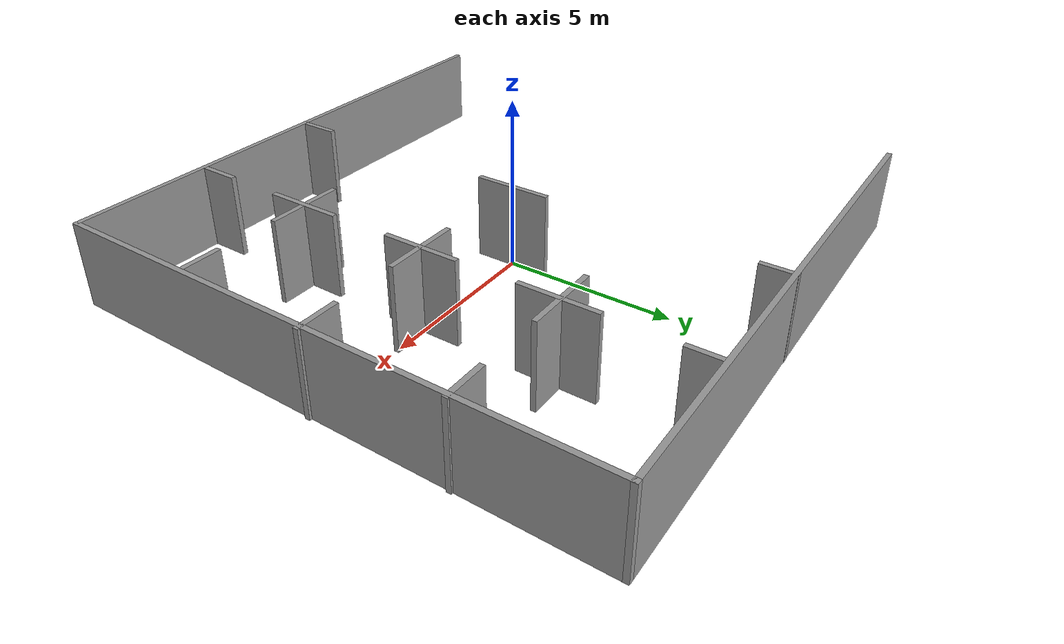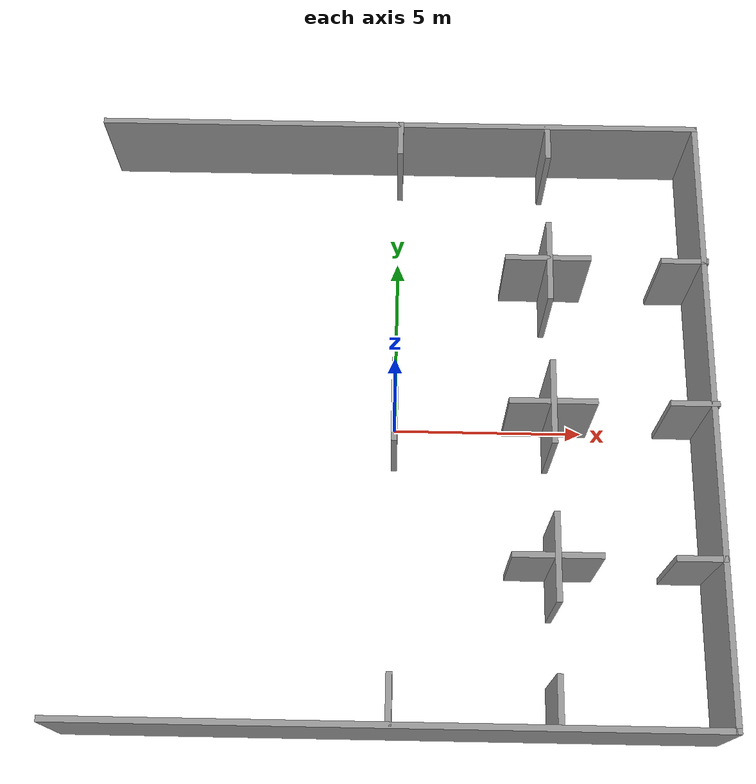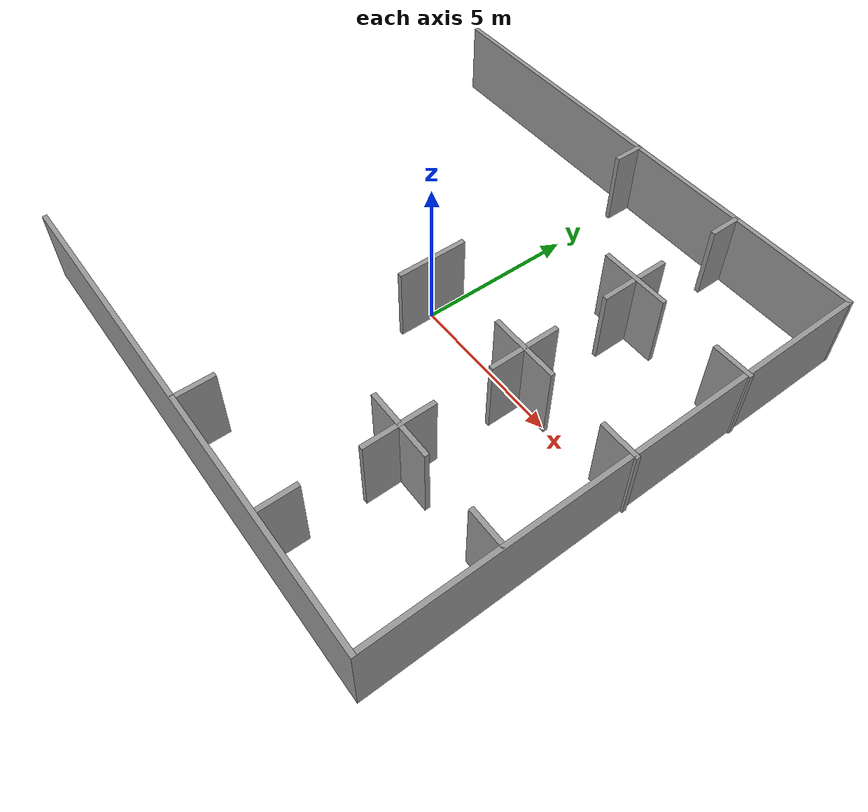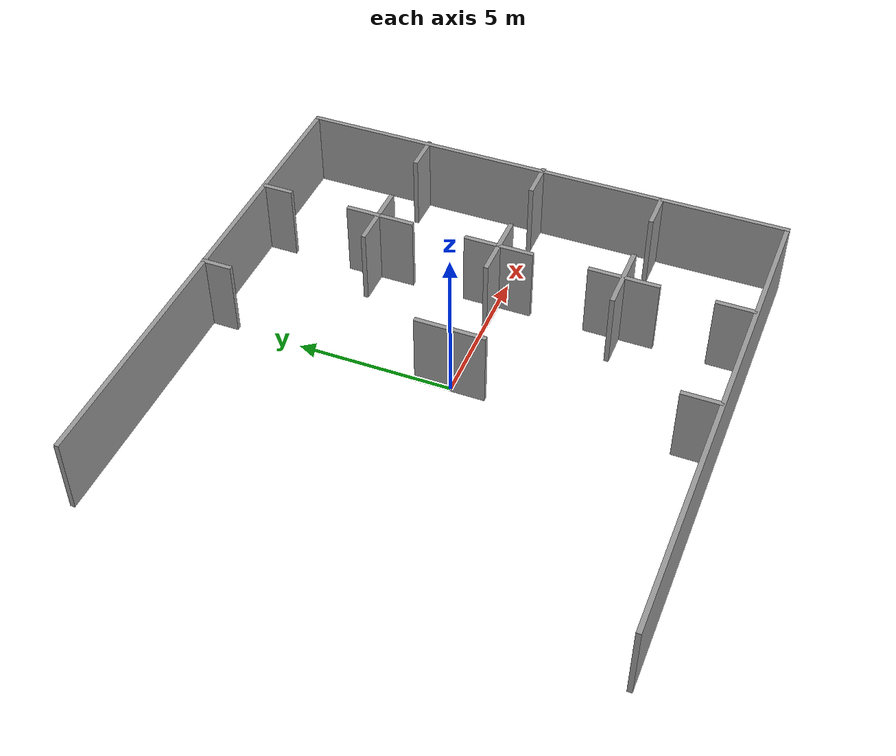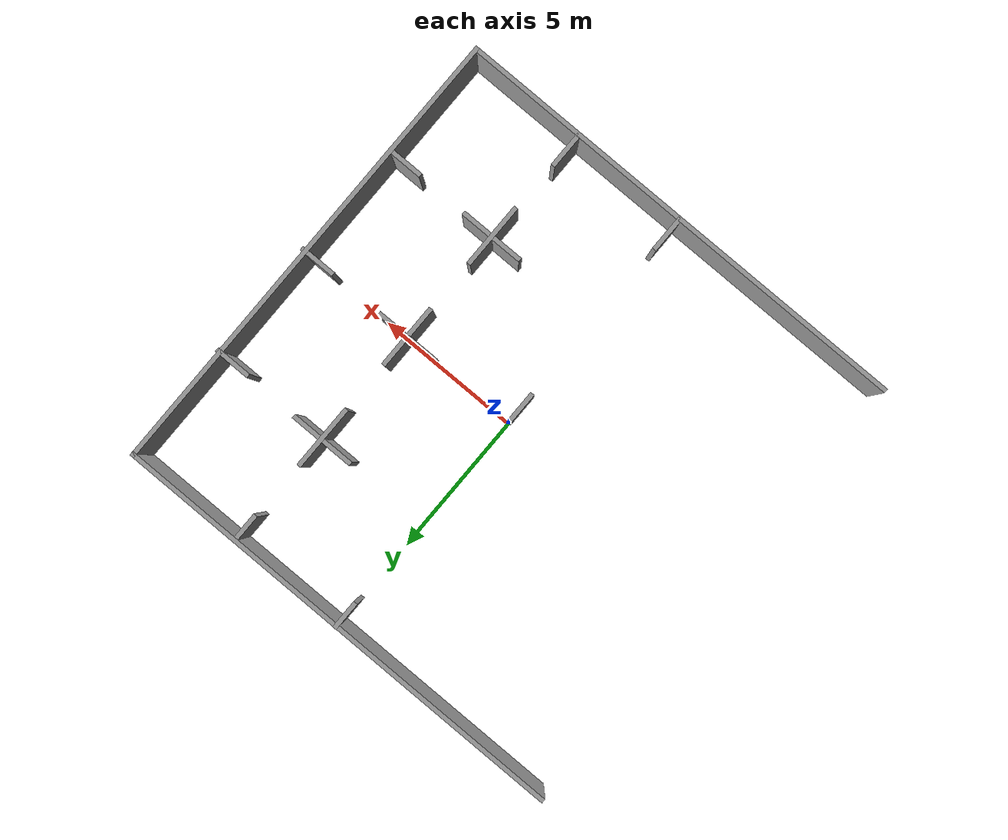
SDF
<sdf version="1.6">
 <model name="grid">
  <link name="Wall_1">
   <pose>-0.008852 -8.05426 0 0 -0 0</pose>
   <visual name="Wall_1_Visual">
    <pose>0 0 1.25 0 -0 0</pose>
    <geometry><box><size>16.25 0.15 2.5</size></box></geometry>
    <material>
     <script><uri>file://media/materials/scripts/gazebo.material</uri><name>Gazebo/Grey</name></script>
     <ambient>1 1 1 1</ambient>
     <diffuse>0.7 0.7 0.7 1</diffuse>
     <specular>0.01 0.01 0.01 1</specular>
     <emissive>0 0 0 1</emissive>
    </material>
   </visual>
   <collision name="Wall_1_Collision">
    <pose>0 0 1.25 0 -0 0</pose>
    <geometry><box><size>16.25 0.15 2.5</size></box></geometry>
    <surface>
     <friction>
      <ode><mu>1</mu><mu2>1</mu2><fdir1>0 0 0</fdir1><slip1>0</slip1><slip2>0</slip2></ode>
      <torsional>
       <coefficient>1</coefficient>
       <patch_radius>0</patch_radius>
       <surface_radius>0</surface_radius>
       <use_patch_radius>1</use_patch_radius>
       <ode><slip>0</slip></ode>
      </torsional>
     </friction>
     <bounce><restitution_coefficient>0</restitution_coefficient><threshold>1e+06</threshold></bounce>
     <contact>
      <collide_without_contact>0</collide_without_contact>
      <collide_without_contact_bitmask>1</collide_without_contact_bitmask>
      <collide_bitmask>1</collide_bitmask>
      <ode>
       <soft_cfm>0</soft_cfm>
       <soft_erp>0.2</soft_erp>
       <kp>1e+13</kp>
       <kd>1</kd>
       <max_vel>0.01</max_vel>
       <min_depth>0</min_depth>
      </ode>
      <bullet>
       <split_impulse>1</split_impulse>
       <split_impulse_penetration_threshold>-0.01</split_impulse_penetration_threshold>
       <soft_cfm>0</soft_cfm>
       <soft_erp>0.2</soft_erp>
       <kp>1e+13</kp>
       <kd>1</kd>
      </bullet>
     </contact>
    </surface>
   </collision>
  </link>
  <link name="Wall_104">
   <pose>-0.007344 0.003934 0 0 0 -1.5708</pose>
   <visual name="Wall_104_Visual">
    <pose>0 0 1.25 0 -0 0</pose>
    <geometry><box><size>2.25 0.15 2.5</size></box></geometry>
    <material>
     <script><uri>file://media/materials/scripts/gazebo.material</uri><name>Gazebo/Grey</name></script>
     <ambient>1 1 1 1</ambient>
     <diffuse>0.7 0.7 0.7 1</diffuse>
     <specular>0.01 0.01 0.01 1</specular>
     <emissive>0 0 0 1</emissive>
    </material>
   </visual>
   <collision name="Wall_104_Collision">
    <pose>0 0 1.25 0 -0 0</pose>
    <geometry><box><size>2.25 0.15 2.5</size></box></geometry>
    <surface>
     <friction>
      <ode><mu>1</mu><mu2>1</mu2><fdir1>0 0 0</fdir1><slip1>0</slip1><slip2>0</slip2></ode>
      <torsional>
       <coefficient>1</coefficient>
       <patch_radius>0</patch_radius>
       <surface_radius>0</surface_radius>
       <use_patch_radius>1</use_patch_radius>
       <ode><slip>0</slip></ode>
      </torsional>
     </friction>
     <bounce><restitution_coefficient>0</restitution_coefficient><threshold>1e+06</threshold></bounce>
     <contact>
      <collide_without_contact>0</collide_without_contact>
      <collide_without_contact_bitmask>1</collide_without_contact_bitmask>
      <collide_bitmask>1</collide_bitmask>
      <ode>
       <soft_cfm>0</soft_cfm>
       <soft_erp>0.2</soft_erp>
       <kp>1e+13</kp>
       <kd>1</kd>
       <max_vel>0.01</max_vel>
       <min_depth>0</min_depth>
      </ode>
      <bullet>
       <split_impulse>1</split_impulse>
       <split_impulse_penetration_threshold>-0.01</split_impulse_penetration_threshold>
       <soft_cfm>0</soft_cfm>
       <soft_erp>0.2</soft_erp>
       <kp>1e+13</kp>
       <kd>1</kd>
      </bullet>
     </contact>
    </surface>
   </collision>
  </link>
  <link name="Wall_2">
   <pose>8.04115 -0.004256 0 0 -0 1.5708</pose>
   <visual name="Wall_2_Visual">
    <pose>0 0 1.25 0 -0 0</pose>
    <geometry><box><size>16.25 0.15 2.5</size></box></geometry>
    <material>
     <script><uri>file://media/materials/scripts/gazebo.material</uri><name>Gazebo/Grey</name></script>
     <ambient>1 1 1 1</ambient>
     <diffuse>0.7 0.7 0.7 1</diffuse>
     <specular>0.01 0.01 0.01 1</specular>
     <emissive>0 0 0 1</emissive>
    </material>
   </visual>
   <collision name="Wall_2_Collision">
    <pose>0 0 1.25 0 -0 0</pose>
    <geometry><box><size>16.25 0.15 2.5</size></box></geometry>
    <surface>
     <friction>
      <ode><mu>1</mu><mu2>1</mu2><fdir1>0 0 0</fdir1><slip1>0</slip1><slip2>0</slip2></ode>
      <torsional>
       <coefficient>1</coefficient>
       <patch_radius>0</patch_radius>
       <surface_radius>0</surface_radius>
       <use_patch_radius>1</use_patch_radius>
       <ode><slip>0</slip></ode>
      </torsional>
     </friction>
     <bounce><restitution_coefficient>0</restitution_coefficient><threshold>1e+06</threshold></bounce>
     <contact>
      <collide_without_contact>0</collide_without_contact>
      <collide_without_contact_bitmask>1</collide_without_contact_bitmask>
      <collide_bitmask>1</collide_bitmask>
      <ode>
       <soft_cfm>0</soft_cfm>
       <soft_erp>0.2</soft_erp>
       <kp>1e+13</kp>
       <kd>1</kd>
       <max_vel>0.01</max_vel>
       <min_depth>0</min_depth>
      </ode>
      <bullet>
       <split_impulse>1</split_impulse>
       <split_impulse_penetration_threshold>-0.01</split_impulse_penetration_threshold>
       <soft_cfm>0</soft_cfm>
       <soft_erp>0.2</soft_erp>
       <kp>1e+13</kp>
       <kd>1</kd>
      </bullet>
     </contact>
    </surface>
   </collision>
  </link>
  <link name="Wall_25">
   <pose>3.99567 3.97198 0 0 0 -1.5708</pose>
   <visual name="Wall_25_Visual">
    <pose>0 0 1.25 0 -0 0</pose>
    <geometry><box><size>2.25 0.15 2.5</size></box></geometry>
    <material>
     <script><uri>file://media/materials/scripts/gazebo.material</uri><name>Gazebo/Grey</name></script>
     <ambient>1 1 1 1</ambient>
     <diffuse>0.7 0.7 0.7 1</diffuse>
     <specular>0.01 0.01 0.01 1</specular>
     <emissive>0 0 0 1</emissive>
    </material>
   </visual>
   <collision name="Wall_25_Collision">
    <pose>0 0 1.25 0 -0 0</pose>
    <geometry><box><size>2.25 0.15 2.5</size></box></geometry>
    <surface>
     <friction>
      <ode><mu>1</mu><mu2>1</mu2><fdir1>0 0 0</fdir1><slip1>0</slip1><slip2>0</slip2></ode>
      <torsional>
       <coefficient>1</coefficient>
       <patch_radius>0</patch_radius>
       <surface_radius>0</surface_radius>
       <use_patch_radius>1</use_patch_radius>
       <ode><slip>0</slip></ode>
      </torsional>
     </friction>
     <bounce><restitution_coefficient>0</restitution_coefficient><threshold>1e+06</threshold></bounce>
     <contact>
      <collide_without_contact>0</collide_without_contact>
      <collide_without_contact_bitmask>1</collide_without_contact_bitmask>
      <collide_bitmask>1</collide_bitmask>
      <ode>
       <soft_cfm>0</soft_cfm>
       <soft_erp>0.2</soft_erp>
       <kp>1e+13</kp>
       <kd>1</kd>
       <max_vel>0.01</max_vel>
       <min_depth>0</min_depth>
      </ode>
      <bullet>
       <split_impulse>1</split_impulse>
       <split_impulse_penetration_threshold>-0.01</split_impulse_penetration_threshold>
       <soft_cfm>0</soft_cfm>
       <soft_erp>0.2</soft_erp>
       <kp>1e+13</kp>
       <kd>1</kd>
      </bullet>
     </contact>
    </surface>
   </collision>
  </link>
  <link name="Wall_29">
   <pose>7.54259 3.99618 0 0 -0 0</pose>
   <visual name="Wall_29_Visual">
    <pose>0 0 1.25 0 -0 0</pose>
    <geometry><box><size>1.25 0.15 2.5</size></box></geometry>
    <material>
     <script><uri>file://media/materials/scripts/gazebo.material</uri><name>Gazebo/Grey</name></script>
     <ambient>1 1 1 1</ambient>
     <diffuse>0.7 0.7 0.7 1</diffuse>
     <specular>0.01 0.01 0.01 1</specular>
     <emissive>0 0 0 1</emissive>
    </material>
   </visual>
   <collision name="Wall_29_Collision">
    <pose>0 0 1.25 0 -0 0</pose>
    <geometry><box><size>1.25 0.15 2.5</size></box></geometry>
    <surface>
     <friction>
      <ode><mu>1</mu><mu2>1</mu2><fdir1>0 0 0</fdir1><slip1>0</slip1><slip2>0</slip2></ode>
      <torsional>
       <coefficient>1</coefficient>
       <patch_radius>0</patch_radius>
       <surface_radius>0</surface_radius>
       <use_patch_radius>1</use_patch_radius>
       <ode><slip>0</slip></ode>
      </torsional>
     </friction>
     <bounce><restitution_coefficient>0</restitution_coefficient><threshold>1e+06</threshold></bounce>
     <contact>
      <collide_without_contact>0</collide_without_contact>
      <collide_without_contact_bitmask>1</collide_without_contact_bitmask>
      <collide_bitmask>1</collide_bitmask>
      <ode>
       <soft_cfm>0</soft_cfm>
       <soft_erp>0.2</soft_erp>
       <kp>1e+13</kp>
       <kd>1</kd>
       <max_vel>0.01</max_vel>
       <min_depth>0</min_depth>
      </ode>
      <bullet>
       <split_impulse>1</split_impulse>
       <split_impulse_penetration_threshold>-0.01</split_impulse_penetration_threshold>
       <soft_cfm>0</soft_cfm>
       <soft_erp>0.2</soft_erp>
       <kp>1e+13</kp>
       <kd>1</kd>
      </bullet>
     </contact>
    </surface>
   </collision>
  </link>
  <link name="Wall_3">
   <pose>-0.008852 8.04574 0 0 -0 3.14159</pose>
   <visual name="Wall_3_Visual">
    <pose>0 0 1.25 0 -0 0</pose>
    <geometry><box><size>16.25 0.15 2.5</size></box></geometry>
    <material>
     <script><uri>file://media/materials/scripts/gazebo.material</uri><name>Gazebo/Grey</name></script>
     <ambient>1 1 1 1</ambient>
     <diffuse>0.7 0.7 0.7 1</diffuse>
     <specular>0.01 0.01 0.01 1</specular>
     <emissive>0 0 0 1</emissive>
    </material>
   </visual>
   <collision name="Wall_3_Collision">
    <pose>0 0 1.25 0 -0 0</pose>
    <geometry><box><size>16.25 0.15 2.5</size></box></geometry>
    <surface>
     <friction>
      <ode><mu>1</mu><mu2>1</mu2><fdir1>0 0 0</fdir1><slip1>0</slip1><slip2>0</slip2></ode>
      <torsional>
       <coefficient>1</coefficient>
       <patch_radius>0</patch_radius>
       <surface_radius>0</surface_radius>
       <use_patch_radius>1</use_patch_radius>
       <ode><slip>0</slip></ode>
      </torsional>
     </friction>
     <bounce><restitution_coefficient>0</restitution_coefficient><threshold>1e+06</threshold></bounce>
     <contact>
      <collide_without_contact>0</collide_without_contact>
      <collide_without_contact_bitmask>1</collide_without_contact_bitmask>
      <collide_bitmask>1</collide_bitmask>
      <ode>
       <soft_cfm>0</soft_cfm>
       <soft_erp>0.2</soft_erp>
       <kp>1e+13</kp>
       <kd>1</kd>
       <max_vel>0.01</max_vel>
       <min_depth>0</min_depth>
      </ode>
      <bullet>
       <split_impulse>1</split_impulse>
       <split_impulse_penetration_threshold>-0.01</split_impulse_penetration_threshold>
       <soft_cfm>0</soft_cfm>
       <soft_erp>0.2</soft_erp>
       <kp>1e+13</kp>
       <kd>1</kd>
      </bullet>
     </contact>
    </surface>
   </collision>
  </link>
  <link name="Wall_46">
   <pose>4.00578 -0.000512 0 0 0 -1.5708</pose>
   <inertial>
    <mass>1</mass>
    <inertia><ixx>1</ixx><ixy>0</ixy><ixz>0</ixz><iyy>1</iyy><iyz>0</iyz><izz>1</izz></inertia>
   </inertial>
   <visual name="Wall_46_Visual">
    <pose>0 0 1.25 0 -0 0</pose>
    <geometry><box><size>2.25 0.15 2.5</size></box></geometry>
    <material>
     <script><uri>file://media/materials/scripts/gazebo.material</uri><name>Gazebo/Grey</name></script>
     <ambient>1 1 1 1</ambient>
     <diffuse>0.7 0.7 0.7 1</diffuse>
     <specular>0.01 0.01 0.01 1</specular>
     <emissive>0 0 0 1</emissive>
     <shader type="vertex"><normal_map>__default__</normal_map></shader>
    </material>
   </visual>
   <collision name="Wall_46_Collision">
    <pose>0 0 1.25 0 -0 0</pose>
    <geometry><box><size>2.25 0.15 2.5</size></box></geometry>
    <surface>
     <friction>
      <ode><mu>1</mu><mu2>1</mu2><fdir1>0 0 0</fdir1><slip1>0</slip1><slip2>0</slip2></ode>
      <torsional>
       <coefficient>1</coefficient>
       <patch_radius>0</patch_radius>
       <surface_radius>0</surface_radius>
       <use_patch_radius>1</use_patch_radius>
       <ode><slip>0</slip></ode>
      </torsional>
     </friction>
     <bounce><restitution_coefficient>0</restitution_coefficient><threshold>1e+06</threshold></bounce>
     <contact>
      <collide_without_contact>0</collide_without_contact>
      <collide_without_contact_bitmask>1</collide_without_contact_bitmask>
      <collide_bitmask>1</collide_bitmask>
      <ode>
       <soft_cfm>0</soft_cfm>
       <soft_erp>0.2</soft_erp>
       <kp>1e+13</kp>
       <kd>1</kd>
       <max_vel>0.01</max_vel>
       <min_depth>0</min_depth>
      </ode>
      <bullet>
       <split_impulse>1</split_impulse>
       <split_impulse_penetration_threshold>-0.01</split_impulse_penetration_threshold>
       <soft_cfm>0</soft_cfm>
       <soft_erp>0.2</soft_erp>
       <kp>1e+13</kp>
       <kd>1</kd>
      </bullet>
     </contact>
    </surface>
   </collision>
  </link>
  <link name="Wall_48">
   <pose>4.0001 0 0 0 -0 0</pose>
   <inertial>
    <mass>1</mass>
    <inertia><ixx>1</ixx><ixy>0</ixy><ixz>0</ixz><iyy>1</iyy><iyz>0</iyz><izz>1</izz></inertia>
   </inertial>
   <visual name="Wall_48_Visual">
    <pose>0 0 1.25 0 -0 0</pose>
    <geometry><box><size>2.25 0.15 2.5</size></box></geometry>
    <material>
     <script><uri>file://media/materials/scripts/gazebo.material</uri><name>Gazebo/Grey</name></script>
     <ambient>1 1 1 1</ambient>
     <diffuse>0.7 0.7 0.7 1</diffuse>
     <specular>0.01 0.01 0.01 1</specular>
     <emissive>0 0 0 1</emissive>
     <shader type="vertex"><normal_map>__default__</normal_map></shader>
    </material>
   </visual>
   <collision name="Wall_48_Collision">
    <pose>0 0 1.25 0 -0 0</pose>
    <geometry><box><size>2.25 0.15 2.5</size></box></geometry>
    <surface>
     <friction>
      <ode><mu>1</mu><mu2>1</mu2><fdir1>0 0 0</fdir1><slip1>0</slip1><slip2>0</slip2></ode>
      <torsional>
       <coefficient>1</coefficient>
       <patch_radius>0</patch_radius>
       <surface_radius>0</surface_radius>
       <use_patch_radius>1</use_patch_radius>
       <ode><slip>0</slip></ode>
      </torsional>
     </friction>
     <bounce><restitution_coefficient>0</restitution_coefficient><threshold>1e+06</threshold></bounce>
     <contact>
      <collide_without_contact>0</collide_without_contact>
      <collide_without_contact_bitmask>1</collide_without_contact_bitmask>
      <collide_bitmask>1</collide_bitmask>
      <ode>
       <soft_cfm>0</soft_cfm>
       <soft_erp>0.2</soft_erp>
       <kp>1e+13</kp>
       <kd>1</kd>
       <max_vel>0.01</max_vel>
       <min_depth>0</min_depth>
      </ode>
      <bullet>
       <split_impulse>1</split_impulse>
       <split_impulse_penetration_threshold>-0.01</split_impulse_penetration_threshold>
       <soft_cfm>0</soft_cfm>
       <soft_erp>0.2</soft_erp>
       <kp>1e+13</kp>
       <kd>1</kd>
      </bullet>
     </contact>
    </surface>
   </collision>
  </link>
  <link name="Wall_50">
   <pose>7.5627 -0.006418 0 0 -0 0</pose>
   <visual name="Wall_50_Visual">
    <pose>0 0 1.25 0 -0 0</pose>
    <geometry><box><size>1.25 0.15 2.5</size></box></geometry>
    <material>
     <script><uri>file://media/materials/scripts/gazebo.material</uri><name>Gazebo/Grey</name></script>
     <ambient>1 1 1 1</ambient>
     <diffuse>0.7 0.7 0.7 1</diffuse>
     <specular>0.01 0.01 0.01 1</specular>
     <emissive>0 0 0 1</emissive>
    </material>
   </visual>
   <collision name="Wall_50_Collision">
    <pose>0 0 1.25 0 -0 0</pose>
    <geometry><box><size>1.25 0.15 2.5</size></box></geometry>
    <surface>
     <friction>
      <ode><mu>1</mu><mu2>1</mu2><fdir1>0 0 0</fdir1><slip1>0</slip1><slip2>0</slip2></ode>
      <torsional>
       <coefficient>1</coefficient>
       <patch_radius>0</patch_radius>
       <surface_radius>0</surface_radius>
       <use_patch_radius>1</use_patch_radius>
       <ode><slip>0</slip></ode>
      </torsional>
     </friction>
     <bounce><restitution_coefficient>0</restitution_coefficient><threshold>1e+06</threshold></bounce>
     <contact>
      <collide_without_contact>0</collide_without_contact>
      <collide_without_contact_bitmask>1</collide_without_contact_bitmask>
      <collide_bitmask>1</collide_bitmask>
      <ode>
       <soft_cfm>0</soft_cfm>
       <soft_erp>0.2</soft_erp>
       <kp>1e+13</kp>
       <kd>1</kd>
       <max_vel>0.01</max_vel>
       <min_depth>0</min_depth>
      </ode>
      <bullet>
       <split_impulse>1</split_impulse>
       <split_impulse_penetration_threshold>-0.01</split_impulse_penetration_threshold>
       <soft_cfm>0</soft_cfm>
       <soft_erp>0.2</soft_erp>
       <kp>1e+13</kp>
       <kd>1</kd>
      </bullet>
     </contact>
    </surface>
   </collision>
  </link>
  <link name="Wall_57">
   <pose>3.95953 4.03641 0 0 -0 0</pose>
   <visual name="Wall_57_Visual">
    <pose>0 0 1.25 0 -0 0</pose>
    <geometry><box><size>2.25 0.15 2.5</size></box></geometry>
    <material>
     <script><uri>file://media/materials/scripts/gazebo.material</uri><name>Gazebo/Grey</name></script>
     <ambient>1 1 1 1</ambient>
     <diffuse>0.7 0.7 0.7 1</diffuse>
     <specular>0.01 0.01 0.01 1</specular>
     <emissive>0 0 0 1</emissive>
    </material>
   </visual>
   <collision name="Wall_57_Collision">
    <pose>0 0 1.25 0 -0 0</pose>
    <geometry><box><size>2.25 0.15 2.5</size></box></geometry>
    <surface>
     <friction>
      <ode><mu>1</mu><mu2>1</mu2><fdir1>0 0 0</fdir1><slip1>0</slip1><slip2>0</slip2></ode>
      <torsional>
       <coefficient>1</coefficient>
       <patch_radius>0</patch_radius>
       <surface_radius>0</surface_radius>
       <use_patch_radius>1</use_patch_radius>
       <ode><slip>0</slip></ode>
      </torsional>
     </friction>
     <bounce><restitution_coefficient>0</restitution_coefficient><threshold>1e+06</threshold></bounce>
     <contact>
      <collide_without_contact>0</collide_without_contact>
      <collide_without_contact_bitmask>1</collide_without_contact_bitmask>
      <collide_bitmask>1</collide_bitmask>
      <ode>
       <soft_cfm>0</soft_cfm>
       <soft_erp>0.2</soft_erp>
       <kp>1e+13</kp>
       <kd>1</kd>
       <max_vel>0.01</max_vel>
       <min_depth>0</min_depth>
      </ode>
      <bullet>
       <split_impulse>1</split_impulse>
       <split_impulse_penetration_threshold>-0.01</split_impulse_penetration_threshold>
       <soft_cfm>0</soft_cfm>
       <soft_erp>0.2</soft_erp>
       <kp>1e+13</kp>
       <kd>1</kd>
      </bullet>
     </contact>
    </surface>
   </collision>
  </link>
  <link name="Wall_59">
   <pose>0.020979 7.62926 0 0 0 -1.5708</pose>
   <visual name="Wall_59_Visual">
    <pose>0 0 1.25 0 -0 0</pose>
    <geometry><box><size>1 0.15 2.5</size></box></geometry>
    <material>
     <script><uri>file://media/materials/scripts/gazebo.material</uri><name>Gazebo/Grey</name></script>
     <ambient>1 1 1 1</ambient>
     <diffuse>0.7 0.7 0.7 1</diffuse>
     <specular>0.01 0.01 0.01 1</specular>
     <emissive>0 0 0 1</emissive>
    </material>
   </visual>
   <collision name="Wall_59_Collision">
    <pose>0 0 1.25 0 -0 0</pose>
    <geometry><box><size>1 0.15 2.5</size></box></geometry>
    <surface>
     <friction>
      <ode><mu>1</mu><mu2>1</mu2><fdir1>0 0 0</fdir1><slip1>0</slip1><slip2>0</slip2></ode>
      <torsional>
       <coefficient>1</coefficient>
       <patch_radius>0</patch_radius>
       <surface_radius>0</surface_radius>
       <use_patch_radius>1</use_patch_radius>
       <ode><slip>0</slip></ode>
      </torsional>
     </friction>
     <bounce><restitution_coefficient>0</restitution_coefficient><threshold>1e+06</threshold></bounce>
     <contact>
      <collide_without_contact>0</collide_without_contact>
      <collide_without_contact_bitmask>1</collide_without_contact_bitmask>
      <collide_bitmask>1</collide_bitmask>
      <ode>
       <soft_cfm>0</soft_cfm>
       <soft_erp>0.2</soft_erp>
       <kp>1e+13</kp>
       <kd>1</kd>
       <max_vel>0.01</max_vel>
       <min_depth>0</min_depth>
      </ode>
      <bullet>
       <split_impulse>1</split_impulse>
       <split_impulse_penetration_threshold>-0.01</split_impulse_penetration_threshold>
       <soft_cfm>0</soft_cfm>
       <soft_erp>0.2</soft_erp>
       <kp>1e+13</kp>
       <kd>1</kd>
      </bullet>
     </contact>
    </surface>
   </collision>
  </link>
  <link name="Wall_61">
   <pose>4.03136 7.5589 0 0 0 -1.5708</pose>
   <visual name="Wall_61_Visual">
    <pose>0 0 1.25 0 -0 0</pose>
    <geometry><box><size>1 0.15 2.5</size></box></geometry>
    <material>
     <script><uri>file://media/materials/scripts/gazebo.material</uri><name>Gazebo/Grey</name></script>
     <ambient>1 1 1 1</ambient>
     <diffuse>0.7 0.7 0.7 1</diffuse>
     <specular>0.01 0.01 0.01 1</specular>
     <emissive>0 0 0 1</emissive>
    </material>
   </visual>
   <collision name="Wall_61_Collision">
    <pose>0 0 1.25 0 -0 0</pose>
    <geometry><box><size>1 0.15 2.5</size></box></geometry>
    <surface>
     <friction>
      <ode><mu>1</mu><mu2>1</mu2><fdir1>0 0 0</fdir1><slip1>0</slip1><slip2>0</slip2></ode>
      <torsional>
       <coefficient>1</coefficient>
       <patch_radius>0</patch_radius>
       <surface_radius>0</surface_radius>
       <use_patch_radius>1</use_patch_radius>
       <ode><slip>0</slip></ode>
      </torsional>
     </friction>
     <bounce><restitution_coefficient>0</restitution_coefficient><threshold>1e+06</threshold></bounce>
     <contact>
      <collide_without_contact>0</collide_without_contact>
      <collide_without_contact_bitmask>1</collide_without_contact_bitmask>
      <collide_bitmask>1</collide_bitmask>
      <ode>
       <soft_cfm>0</soft_cfm>
       <soft_erp>0.2</soft_erp>
       <kp>1e+13</kp>
       <kd>1</kd>
       <max_vel>0.01</max_vel>
       <min_depth>0</min_depth>
      </ode>
      <bullet>
       <split_impulse>1</split_impulse>
       <split_impulse_penetration_threshold>-0.01</split_impulse_penetration_threshold>
       <soft_cfm>0</soft_cfm>
       <soft_erp>0.2</soft_erp>
       <kp>1e+13</kp>
       <kd>1</kd>
      </bullet>
     </contact>
    </surface>
   </collision>
  </link>
  <link name="Wall_76">
   <pose>4.00803 -4.0055 0 0 0 -1.5708</pose>
   <inertial>
    <mass>1</mass>
    <inertia><ixx>1</ixx><ixy>0</ixy><ixz>0</ixz><iyy>1</iyy><iyz>0</iyz><izz>1</izz></inertia>
   </inertial>
   <visual name="Wall_76_Visual">
    <pose>0 0 1.25 0 -0 0</pose>
    <geometry><box><size>2.25 0.15 2.5</size></box></geometry>
    <material>
     <script><uri>file://media/materials/scripts/gazebo.material</uri><name>Gazebo/Grey</name></script>
     <ambient>1 1 1 1</ambient>
     <diffuse>0.7 0.7 0.7 1</diffuse>
     <specular>0.01 0.01 0.01 1</specular>
     <emissive>0 0 0 1</emissive>
     <shader type="vertex"><normal_map>__default__</normal_map></shader>
    </material>
   </visual>
   <collision name="Wall_76_Collision">
    <pose>0 0 1.25 0 -0 0</pose>
    <geometry><box><size>2.25 0.15 2.5</size></box></geometry>
    <surface>
     <friction>
      <ode><mu>1</mu><mu2>1</mu2><fdir1>0 0 0</fdir1><slip1>0</slip1><slip2>0</slip2></ode>
      <torsional>
       <coefficient>1</coefficient>
       <patch_radius>0</patch_radius>
       <surface_radius>0</surface_radius>
       <use_patch_radius>1</use_patch_radius>
       <ode><slip>0</slip></ode>
      </torsional>
     </friction>
     <bounce><restitution_coefficient>0</restitution_coefficient><threshold>1e+06</threshold></bounce>
     <contact>
      <collide_without_contact>0</collide_without_contact>
      <collide_without_contact_bitmask>1</collide_without_contact_bitmask>
      <collide_bitmask>1</collide_bitmask>
      <ode>
       <soft_cfm>0</soft_cfm>
       <soft_erp>0.2</soft_erp>
       <kp>1e+13</kp>
       <kd>1</kd>
       <max_vel>0.01</max_vel>
       <min_depth>0</min_depth>
      </ode>
      <bullet>
       <split_impulse>1</split_impulse>
       <split_impulse_penetration_threshold>-0.01</split_impulse_penetration_threshold>
       <soft_cfm>0</soft_cfm>
       <soft_erp>0.2</soft_erp>
       <kp>1e+13</kp>
       <kd>1</kd>
      </bullet>
     </contact>
    </surface>
   </collision>
  </link>
  <link name="Wall_78">
   <pose>4.00821 -3.97844 0 0 -0 0</pose>
   <visual name="Wall_78_Visual">
    <pose>0 0 1.25 0 -0 0</pose>
    <geometry><box><size>2.25 0.15 2.5</size></box></geometry>
    <material>
     <script><uri>file://media/materials/scripts/gazebo.material</uri><name>Gazebo/Grey</name></script>
     <ambient>1 1 1 1</ambient>
     <diffuse>0.7 0.7 0.7 1</diffuse>
     <specular>0.01 0.01 0.01 1</specular>
     <emissive>0 0 0 1</emissive>
    </material>
   </visual>
   <collision name="Wall_78_Collision">
    <pose>0 0 1.25 0 -0 0</pose>
    <geometry><box><size>2.25 0.15 2.5</size></box></geometry>
    <surface>
     <friction>
      <ode><mu>1</mu><mu2>1</mu2><fdir1>0 0 0</fdir1><slip1>0</slip1><slip2>0</slip2></ode>
      <torsional>
       <coefficient>1</coefficient>
       <patch_radius>0</patch_radius>
       <surface_radius>0</surface_radius>
       <use_patch_radius>1</use_patch_radius>
       <ode><slip>0</slip></ode>
      </torsional>
     </friction>
     <bounce><restitution_coefficient>0</restitution_coefficient><threshold>1e+06</threshold></bounce>
     <contact>
      <collide_without_contact>0</collide_without_contact>
      <collide_without_contact_bitmask>1</collide_without_contact_bitmask>
      <collide_bitmask>1</collide_bitmask>
      <ode>
       <soft_cfm>0</soft_cfm>
       <soft_erp>0.2</soft_erp>
       <kp>1e+13</kp>
       <kd>1</kd>
       <max_vel>0.01</max_vel>
       <min_depth>0</min_depth>
      </ode>
      <bullet>
       <split_impulse>1</split_impulse>
       <split_impulse_penetration_threshold>-0.01</split_impulse_penetration_threshold>
       <soft_cfm>0</soft_cfm>
       <soft_erp>0.2</soft_erp>
       <kp>1e+13</kp>
       <kd>1</kd>
      </bullet>
     </contact>
    </surface>
   </collision>
  </link>
  <link name="Wall_80">
   <pose>7.47272 -4.00886 0 0 -0 3.14159</pose>
   <visual name="Wall_80_Visual">
    <pose>0 0 1.25 0 -0 0</pose>
    <geometry><box><size>1.25 0.15 2.5</size></box></geometry>
    <material>
     <script><uri>file://media/materials/scripts/gazebo.material</uri><name>Gazebo/Grey</name></script>
     <ambient>1 1 1 1</ambient>
     <diffuse>0.7 0.7 0.7 1</diffuse>
     <specular>0.01 0.01 0.01 1</specular>
     <emissive>0 0 0 1</emissive>
    </material>
   </visual>
   <collision name="Wall_80_Collision">
    <pose>0 0 1.25 0 -0 0</pose>
    <geometry><box><size>1.25 0.15 2.5</size></box></geometry>
    <surface>
     <friction>
      <ode><mu>1</mu><mu2>1</mu2><fdir1>0 0 0</fdir1><slip1>0</slip1><slip2>0</slip2></ode>
      <torsional>
       <coefficient>1</coefficient>
       <patch_radius>0</patch_radius>
       <surface_radius>0</surface_radius>
       <use_patch_radius>1</use_patch_radius>
       <ode><slip>0</slip></ode>
      </torsional>
     </friction>
     <bounce><restitution_coefficient>0</restitution_coefficient><threshold>1e+06</threshold></bounce>
     <contact>
      <collide_without_contact>0</collide_without_contact>
      <collide_without_contact_bitmask>1</collide_without_contact_bitmask>
      <collide_bitmask>1</collide_bitmask>
      <ode>
       <soft_cfm>0</soft_cfm>
       <soft_erp>0.2</soft_erp>
       <kp>1e+13</kp>
       <kd>1</kd>
       <max_vel>0.01</max_vel>
       <min_depth>0</min_depth>
      </ode>
      <bullet>
       <split_impulse>1</split_impulse>
       <split_impulse_penetration_threshold>-0.01</split_impulse_penetration_threshold>
       <soft_cfm>0</soft_cfm>
       <soft_erp>0.2</soft_erp>
       <kp>1e+13</kp>
       <kd>1</kd>
      </bullet>
     </contact>
    </surface>
   </collision>
  </link>
  <link name="Wall_86">
   <pose>-0.017571 -7.46132 0 0 -0 1.5708</pose>
   <visual name="Wall_86_Visual">
    <pose>0 0 1.25 0 -0 0</pose>
    <geometry><box><size>1.25 0.15 2.5</size></box></geometry>
    <material>
     <script><uri>file://media/materials/scripts/gazebo.material</uri><name>Gazebo/Grey</name></script>
     <ambient>1 1 1 1</ambient>
     <diffuse>0.7 0.7 0.7 1</diffuse>
     <specular>0.01 0.01 0.01 1</specular>
     <emissive>0 0 0 1</emissive>
    </material>
   </visual>
   <collision name="Wall_86_Collision">
    <pose>0 0 1.25 0 -0 0</pose>
    <geometry><box><size>1.25 0.15 2.5</size></box></geometry>
    <surface>
     <friction>
      <ode><mu>1</mu><mu2>1</mu2><fdir1>0 0 0</fdir1><slip1>0</slip1><slip2>0</slip2></ode>
      <torsional>
       <coefficient>1</coefficient>
       <patch_radius>0</patch_radius>
       <surface_radius>0</surface_radius>
       <use_patch_radius>1</use_patch_radius>
       <ode><slip>0</slip></ode>
      </torsional>
     </friction>
     <bounce><restitution_coefficient>0</restitution_coefficient><threshold>1e+06</threshold></bounce>
     <contact>
      <collide_without_contact>0</collide_without_contact>
      <collide_without_contact_bitmask>1</collide_without_contact_bitmask>
      <collide_bitmask>1</collide_bitmask>
      <ode>
       <soft_cfm>0</soft_cfm>
       <soft_erp>0.2</soft_erp>
       <kp>1e+13</kp>
       <kd>1</kd>
       <max_vel>0.01</max_vel>
       <min_depth>0</min_depth>
      </ode>
      <bullet>
       <split_impulse>1</split_impulse>
       <split_impulse_penetration_threshold>-0.01</split_impulse_penetration_threshold>
       <soft_cfm>0</soft_cfm>
       <soft_erp>0.2</soft_erp>
       <kp>1e+13</kp>
       <kd>1</kd>
      </bullet>
     </contact>
    </surface>
   </collision>
  </link>
  <link name="Wall_88">
   <pose>3.97041 -7.43559 0 0 -0 1.5708</pose>
   <visual name="Wall_88_Visual">
    <pose>0 0 1.25 0 -0 0</pose>
    <geometry><box><size>1.25 0.15 2.5</size></box></geometry>
    <material>
     <script><uri>file://media/materials/scripts/gazebo.material</uri><name>Gazebo/Grey</name></script>
     <ambient>1 1 1 1</ambient>
     <diffuse>0.7 0.7 0.7 1</diffuse>
     <specular>0.01 0.01 0.01 1</specular>
     <emissive>0 0 0 1</emissive>
    </material>
   </visual>
   <collision name="Wall_88_Collision">
    <pose>0 0 1.25 0 -0 0</pose>
    <geometry><box><size>1.25 0.15 2.5</size></box></geometry>
    <surface>
     <friction>
      <ode><mu>1</mu><mu2>1</mu2><fdir1>0 0 0</fdir1><slip1>0</slip1><slip2>0</slip2></ode>
      <torsional>
       <coefficient>1</coefficient>
       <patch_radius>0</patch_radius>
       <surface_radius>0</surface_radius>
       <use_patch_radius>1</use_patch_radius>
       <ode><slip>0</slip></ode>
      </torsional>
     </friction>
     <bounce><restitution_coefficient>0</restitution_coefficient><threshold>1e+06</threshold></bounce>
     <contact>
      <collide_without_contact>0</collide_without_contact>
      <collide_without_contact_bitmask>1</collide_without_contact_bitmask>
      <collide_bitmask>1</collide_bitmask>
      <ode>
       <soft_cfm>0</soft_cfm>
       <soft_erp>0.2</soft_erp>
       <kp>1e+13</kp>
       <kd>1</kd>
       <max_vel>0.01</max_vel>
       <min_depth>0</min_depth>
      </ode>
      <bullet>
       <split_impulse>1</split_impulse>
       <split_impulse_penetration_threshold>-0.01</split_impulse_penetration_threshold>
       <soft_cfm>0</soft_cfm>
       <soft_erp>0.2</soft_erp>
       <kp>1e+13</kp>
       <kd>1</kd>
      </bullet>
     </contact>
    </surface>
   </collision>
  </link>
  <static>1</static>
 </model>
</sdf>
